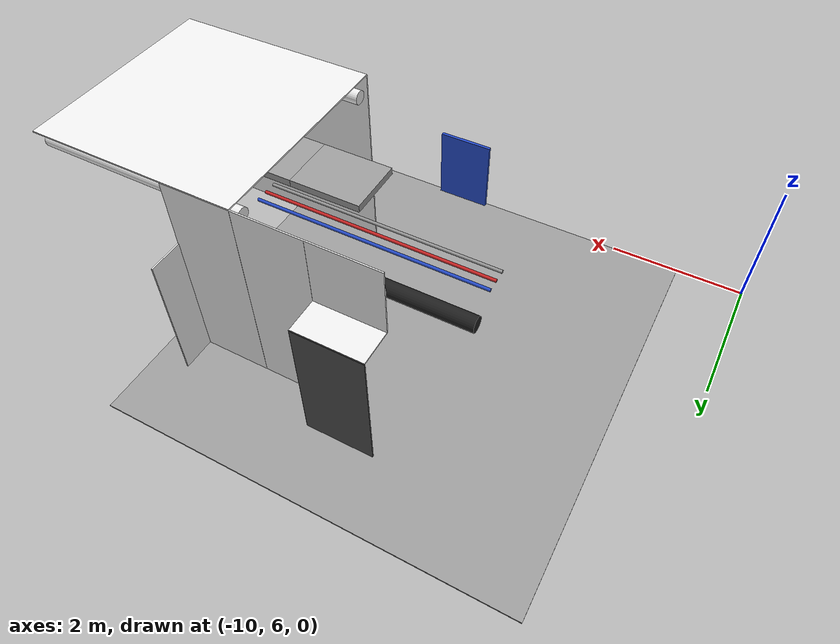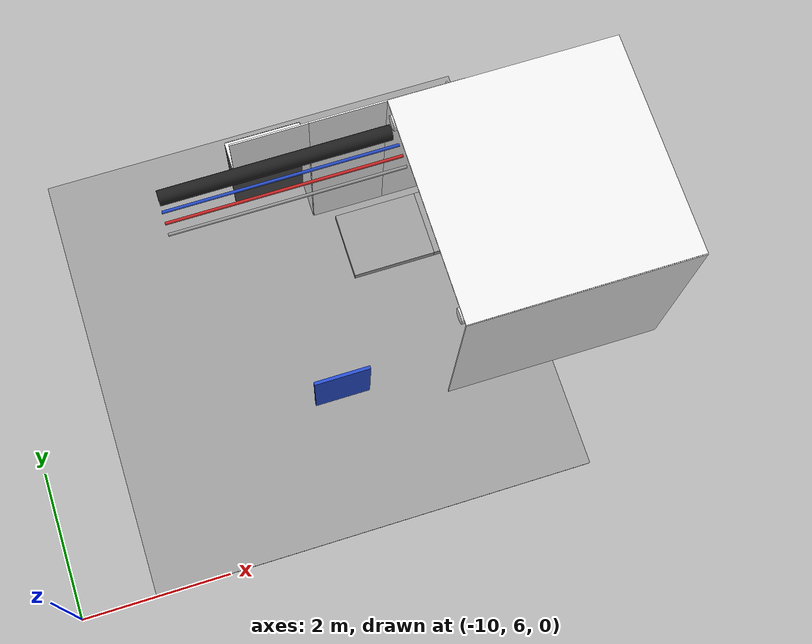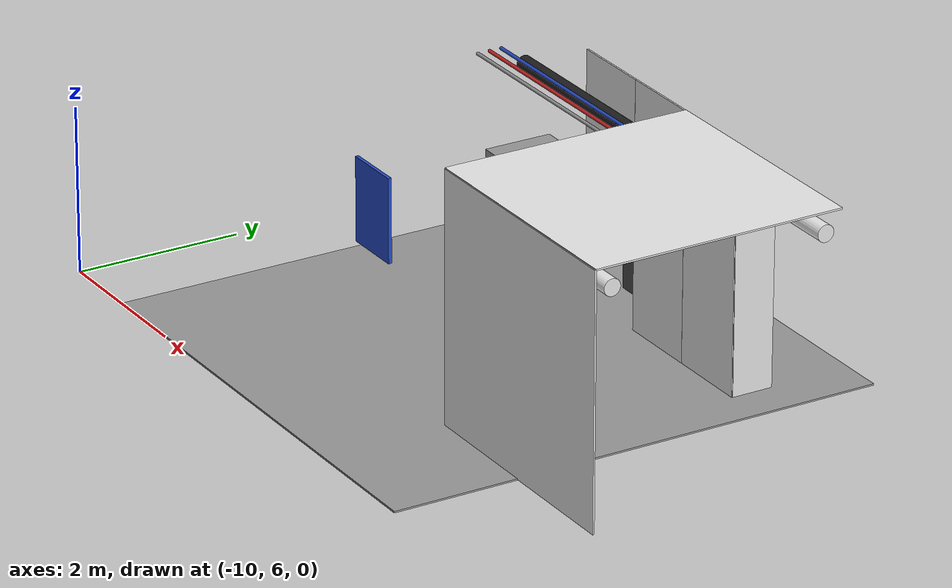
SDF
<sdf version="1.6">
 <world name="default">
  <model name="wall_left_-1_3_0_1">
   <static>1</static>
   <pose>-3.0 7.5 1.5 0.0 0.0 3.14</pose>
   <link name="link">
    <collision name="collision"><geometry><box><size>3.0 0.02 3.0</size></box></geometry></collision>
    <visual name="visual">
     <material>
      <script><name>Gazebo/White</name><uri>file://media/materials/scripts/gazebo.material</uri></script>
     </material>
     <geometry><box><size>3.0 0.02 3.0</size></box></geometry>
    </visual>
   </link>
  </model>
  <model name="wall_top_-1_3_0_1">
   <static>1</static>
   <pose>-3.0 9.0 3.0 1.57 0.0 1.57</pose>
   <link name="link">
    <collision name="collision"><geometry><box><size>3.0 0.02 3.0</size></box></geometry></collision>
    <visual name="visual">
     <material>
      <script><name>Gazebo/White</name><uri>file://media/materials/scripts/gazebo.material</uri></script>
     </material>
     <geometry><box><size>3.0 0.02 3.0</size></box></geometry>
    </visual>
   </link>
  </model>
  <model name="ceiling_1_-1_3_0_1">
   <pose>-3.0 9.0 2.55 0.0 0.0 1.57</pose>
   <link name="link_1">
    <visual name="visual">
     <geometry><box><size>0.8 1 0.1</size></box></geometry>
     <material>
      <script><uri>file://media/materials/scripts/gazebo.material</uri><name>Gazebo/Grey</name></script>
     </material>
    </visual>
    <collision name="collision"><geometry><box><size>0.8 1 0.1</size></box></geometry></collision>
   </link>
   <static>1</static>
  </model>
  <model name="ceiling_1_-1_3_2_1">
   <pose>-4.0 9.0 2.55 0.0 0.0 1.57</pose>
   <link name="link_1">
    <visual name="visual">
     <geometry><box><size>0.8 1 0.1</size></box></geometry>
     <material>
      <script><uri>file://media/materials/scripts/gazebo.material</uri><name>Gazebo/Grey</name></script>
     </material>
    </visual>
    <collision name="collision"><geometry><box><size>0.8 1 0.1</size></box></geometry></collision>
   </link>
   <static>1</static>
  </model>
  <model name="white_pipe_left_-1_3_0_1">
   <static>1</static>
   <pose>-3.0 9.0 2.76 0.0 0.0 1.57</pose>
   <link name="link_0">
    <visual name="visual">
     <pose>-1.3 0 0 1.57 0 0</pose>
     <geometry><cylinder><radius>0.1</radius><length>3.0</length></cylinder></geometry>
     <material>
      <script><uri>file://media/materials/scripts/gazebo.material</uri><name>Gazebo/White</name></script>
     </material>
    </visual>
    <collision name="collision">
     <pose>-1.3 0 0 1.57 0 0</pose>
     <geometry><cylinder><radius>0.1</radius><length>3.0</length></cylinder></geometry>
    </collision>
   </link>
  </model>
  <model name="white_pipe_right_-1_3_0_1">
   <static>1</static>
   <pose>-3.0 9.0 2.76 0.0 0.0 1.57</pose>
   <link name="link_0">
    <visual name="visual">
     <pose>1.3 0 0 1.57 0 0</pose>
     <geometry><cylinder><radius>0.1</radius><length>3.0</length></cylinder></geometry>
     <material>
      <script><uri>file://media/materials/scripts/gazebo.material</uri><name>Gazebo/White</name></script>
     </material>
    </visual>
    <collision name="collision">
     <pose>1.3 0 0 1.57 0 0</pose>
     <geometry><cylinder><radius>0.1</radius><length>3.0</length></cylinder></geometry>
    </collision>
   </link>
  </model>
  <model name="wall_right_front_left_-1_3_0_1">
   <static>1</static>
   <pose>-4.0 10.5 1.5 0.0 0.0 3.14</pose>
   <link name="link">
    <collision name="collision"><geometry><box><size>1.0 0.02 3.0</size></box></geometry></collision>
    <visual name="visual">
     <material>
      <script><name>Gazebo/White</name><uri>file://media/materials/scripts/gazebo.material</uri></script>
     </material>
     <geometry><box><size>1.0 0.02 3.0</size></box></geometry>
    </visual>
   </link>
  </model>
  <model name="wall_right_inside_left_-1_3_0_1">
   <static>1</static>
   <pose>-3.5 10.75 1.0 0.0 0.0 1.57</pose>
   <link name="link">
    <collision name="collision"><geometry><box><size>0.5 0.02 2</size></box></geometry></collision>
    <visual name="visual">
     <material>
      <script><name>Gazebo/White</name><uri>file://media/materials/scripts/gazebo.material</uri></script>
     </material>
     <geometry><box><size>0.5 0.02 2</size></box></geometry>
    </visual>
   </link>
  </model>
  <model name="ceiling_1_-2_3_1_1">
   <pose>-5.0 9.0 2.55 0.0 0.0 1.57</pose>
   <link name="link_1">
    <visual name="visual">
     <geometry><box><size>0.8 1 0.1</size></box></geometry>
     <material>
      <script><uri>file://media/materials/scripts/gazebo.material</uri><name>Gazebo/Grey</name></script>
     </material>
    </visual>
    <collision name="collision"><geometry><box><size>0.8 1 0.1</size></box></geometry></collision>
   </link>
   <static>1</static>
  </model>
  <model name="black_pipe_right_-2_3_0_1">
   <static>1</static>
   <pose>-6.0 9.0 2.76 0.0 0.0 1.57</pose>
   <link name="link_0">
    <visual name="visual">
     <pose>1.3 0 -0.25 1.57 0 0</pose>
     <geometry><cylinder><radius>0.1</radius><length>3.0</length></cylinder></geometry>
     <material>
      <script><uri>file://media/materials/scripts/gazebo.material</uri><name>Gazebo/Black</name></script>
     </material>
    </visual>
    <collision name="collision">
     <pose>1.3 0 -0.25 1.57 0 0</pose>
     <geometry><cylinder><radius>0.1</radius><length>3.0</length></cylinder></geometry>
    </collision>
   </link>
  </model>
  <model name="grey_pipe_right_-2_3_0_1">
   <static>1</static>
   <pose>-6.0 9.0 2.76 0.0 0.0 1.57</pose>
   <link name="link_0">
    <visual name="visual">
     <pose>0.7 0 0 1.57 0 0</pose>
     <geometry><cylinder><radius>0.02</radius><length>3.0</length></cylinder></geometry>
     <material>
      <script><uri>file://media/materials/scripts/gazebo.material</uri><name>Gazebo/Grey</name></script>
     </material>
    </visual>
    <collision name="collision">
     <pose>0.7 0 0 1.57 0 0</pose>
     <geometry><cylinder><radius>0.02</radius><length>3.0</length></cylinder></geometry>
    </collision>
   </link>
  </model>
  <model name="red_pipe_right_-2_3_0_1">
   <static>1</static>
   <pose>-6.0 9.0 2.76 0.0 0.0 1.57</pose>
   <link name="link_0">
    <visual name="visual">
     <pose>0.85 0 0 1.57 0 0</pose>
     <geometry><cylinder><radius>0.02</radius><length>3.0</length></cylinder></geometry>
     <material>
      <script><uri>file://media/materials/scripts/gazebo.material</uri><name>Gazebo/Red</name></script>
     </material>
    </visual>
    <collision name="collision">
     <pose>0.85 0 0 1.57 0 0</pose>
     <geometry><cylinder><radius>0.02</radius><length>3.0</length></cylinder></geometry>
    </collision>
   </link>
  </model>
  <model name="blue_pipe_right_-2_3_0_1">
   <static>1</static>
   <pose>-6.0 9.0 2.76 0.0 0.0 1.57</pose>
   <link name="link_0">
    <visual name="visual">
     <pose>1 0 0 1.57 0 0</pose>
     <geometry><cylinder><radius>0.02</radius><length>3.0</length></cylinder></geometry>
     <material>
      <script><uri>file://media/materials/scripts/gazebo.material</uri><name>Gazebo/Blue</name></script>
     </material>
    </visual>
    <collision name="collision">
     <pose>1 0 0 1.57 0 0</pose>
     <geometry><cylinder><radius>0.02</radius><length>3.0</length></cylinder></geometry>
    </collision>
   </link>
  </model>
  <model name="panel_-2_3_0_1">
   <static>1</static>
   <pose>-6.0 7.5 1.95 0.0 0.0 1.57</pose>
   <link name="link">
    <collision name="collision"><geometry><box><size>0.04 0.7 1</size></box></geometry></collision>
    <visual name="visual">
     <material>
      <script><name>Gazebo/Blue</name><uri>file://media/materials/scripts/gazebo.material</uri></script>
     </material>
     <geometry><box><size>0.04 0.7 1</size></box></geometry>
    </visual>
   </link>
  </model>
  <model name="wall_right_front_right_-2_3_0_1">
   <static>1</static>
   <pose>-5.0 10.5 1.5 0.0 0.0 3.14</pose>
   <link name="link">
    <collision name="collision"><geometry><box><size>1.0 0.02 3.0</size></box></geometry></collision>
    <visual name="visual">
     <material>
      <script><name>Gazebo/White</name><uri>file://media/materials/scripts/gazebo.material</uri></script>
     </material>
     <geometry><box><size>1.0 0.02 3.0</size></box></geometry>
    </visual>
   </link>
  </model>
  <model name="wall_right_front_up_-2_3_0_1">
   <static>1</static>
   <pose>-6.0 10.5 2.5 0.0 0.0 3.14</pose>
   <link name="link">
    <collision name="collision"><geometry><box><size>1.0 0.02 1.0</size></box></geometry></collision>
    <visual name="visual">
     <material>
      <script><name>Gazebo/White</name><uri>file://media/materials/scripts/gazebo.material</uri></script>
     </material>
     <geometry><box><size>1.0 0.02 1.0</size></box></geometry>
    </visual>
   </link>
  </model>
  <model name="wall_right_inside_back_-2_3_0_1">
   <static>1</static>
   <pose>-6.0 11.0 1.0 0.0 0.0 3.14</pose>
   <link name="link">
    <collision name="collision"><geometry><box><size>1 0.02 2</size></box></geometry></collision>
    <visual name="visual">
     <material>
      <script><name>Gazebo/DarkGrey</name><uri>file://media/materials/scripts/gazebo.material</uri></script>
     </material>
     <geometry><box><size>1 0.02 2</size></box></geometry>
    </visual>
   </link>
  </model>
  <model name="wall_right_inside_right_-2_3_0_1">
   <static>1</static>
   <pose>-5.5 10.75 1.0 0.0 0.0 1.57</pose>
   <link name="link">
    <collision name="collision"><geometry><box><size>0.5 0.02 2</size></box></geometry></collision>
    <visual name="visual">
     <material>
      <script><name>Gazebo/White</name><uri>file://media/materials/scripts/gazebo.material</uri></script>
     </material>
     <geometry><box><size>0.5 0.02 2</size></box></geometry>
    </visual>
   </link>
  </model>
  <model name="wall_right_inside_top_-2_3_0_1">
   <static>1</static>
   <pose>-6.0 10.75 2.0 1.57 0.0 3.14</pose>
   <link name="link">
    <collision name="collision"><geometry><box><size>1 0.02 0.5</size></box></geometry></collision>
    <visual name="visual">
     <material>
      <script><name>Gazebo/White</name><uri>file://media/materials/scripts/gazebo.material</uri></script>
     </material>
     <geometry><box><size>1 0.02 0.5</size></box></geometry>
    </visual>
   </link>
  </model>
  <model name="wall_bottom_-2_3_0_1">
   <static>1</static>
   <pose>-6.0 9.0 0.0 0.0 0.0 1.57</pose>
   <link name="link">
    <collision name="collision"><geometry><box><size>6.0 6.0 0.02</size></box></geometry></collision>
    <visual name="visual">
     <material>
      <script><name>Gazebo/Grey</name><uri>file://media/materials/scripts/gazebo.material</uri></script>
     </material>
     <geometry><box><size>6.0 6.0 0.02</size></box></geometry>
    </visual>
   </link>
  </model>
 </world>
</sdf>
